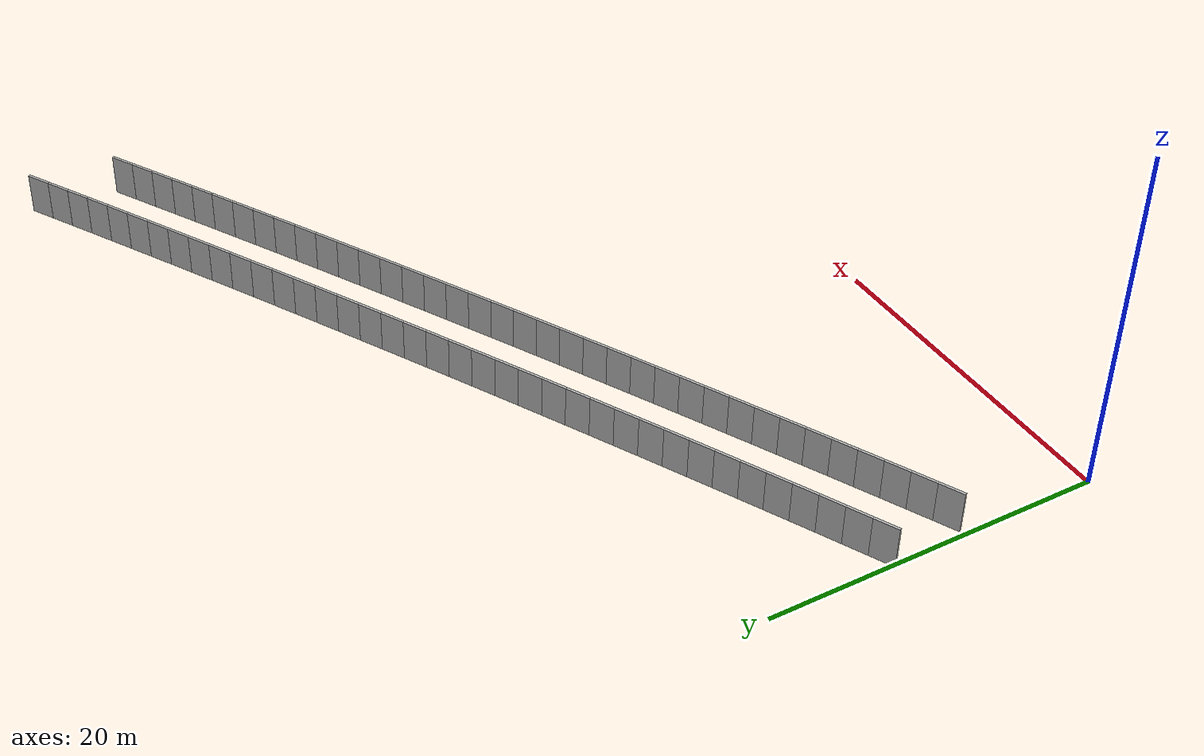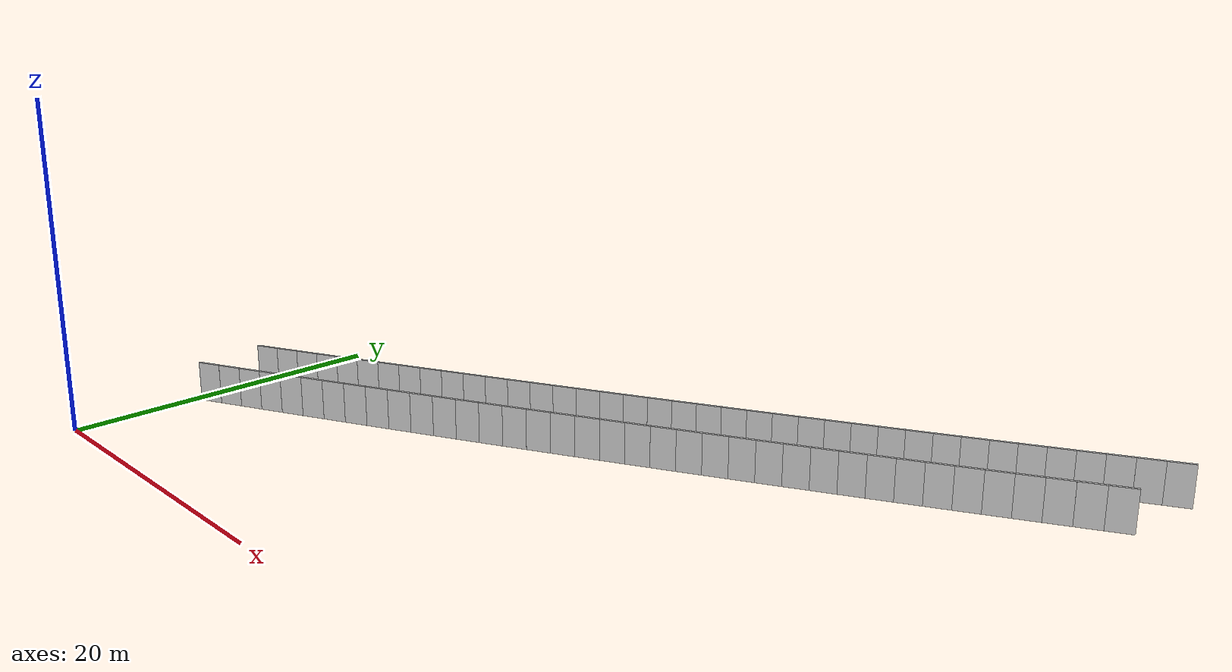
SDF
<?xml version="1.0" ?>
<sdf version="1.6">
  <model name="sps_3405">
    <pose frame="">0 0 0 0 -0 0</pose>
    <static>1</static>
    <self_collide>0</self_collide>
    <allow_auto_disable>0</allow_auto_disable>
    <link name="Wall3948">
      <kinematic>0</kinematic>
      <gravity>1</gravity>
      <self_collide>0</self_collide>
      <collision name="collision">
        <geometry>
          <box>
            <size>1.49651 0.15 2.5</size>
          </box>
        </geometry>
        <pose frame="">0 0 0 0 -0 0</pose>
      </collision>
      <visual name="visual">
        <geometry>
          <box>
            <size>1.49651 0.15 2.5</size>
          </box>
        </geometry>
        <pose frame="">0 0 0 0 -0 0</pose>
        <cast_shadows>1</cast_shadows>
        <transparency>0.0</transparency>
      </visual>
      <pose frame="">0.59185 12.7953 1.25 0 -0 0.449329</pose>
    </link>
    <link name="Wall3949">
      <kinematic>0</kinematic>
      <gravity>1</gravity>
      <self_collide>0</self_collide>
      <collision name="collision">
        <geometry>
          <box>
            <size>1.4967 0.15 2.5</size>
          </box>
        </geometry>
        <pose frame="">0 0 0 0 -0 0</pose>
      </collision>
      <visual name="visual">
        <geometry>
          <box>
            <size>1.4967 0.15 2.5</size>
          </box>
        </geometry>
        <pose frame="">0 0 0 0 -0 0</pose>
        <cast_shadows>1</cast_shadows>
        <transparency>0.0</transparency>
      </visual>
      <pose frame="">1.93944 13.4463 1.25 0 -0 0.450717</pose>
    </link>
    <link name="Wall3950">
      <kinematic>0</kinematic>
      <gravity>1</gravity>
      <self_collide>0</self_collide>
      <collision name="collision">
        <geometry>
          <box>
            <size>1.49639 0.15 2.5</size>
          </box>
        </geometry>
        <pose frame="">0 0 0 0 -0 0</pose>
      </collision>
      <visual name="visual">
        <geometry>
          <box>
            <size>1.49639 0.15 2.5</size>
          </box>
        </geometry>
        <pose frame="">0 0 0 0 -0 0</pose>
        <cast_shadows>1</cast_shadows>
        <transparency>0.0</transparency>
      </visual>
      <pose frame="">3.28597 14.0994 1.25 0 -0 0.452447</pose>
    </link>
    <link name="Wall3951">
      <kinematic>0</kinematic>
      <gravity>1</gravity>
      <self_collide>0</self_collide>
      <collision name="collision">
        <geometry>
          <box>
            <size>1.49669 0.15 2.5</size>
          </box>
        </geometry>
        <pose frame="">0 0 0 0 -0 0</pose>
      </collision>
      <visual name="visual">
        <geometry>
          <box>
            <size>1.49669 0.15 2.5</size>
          </box>
        </geometry>
        <pose frame="">0 0 0 0 -0 0</pose>
        <cast_shadows>1</cast_shadows>
        <transparency>0.0</transparency>
      </visual>
      <pose frame="">4.63137 14.7548 1.25 0 -0 0.454164</pose>
    </link>
    <link name="Wall3952">
      <kinematic>0</kinematic>
      <gravity>1</gravity>
      <self_collide>0</self_collide>
      <collision name="collision">
        <geometry>
          <box>
            <size>1.49643 0.15 2.5</size>
          </box>
        </geometry>
        <pose frame="">0 0 0 0 -0 0</pose>
      </collision>
      <visual name="visual">
        <geometry>
          <box>
            <size>1.49643 0.15 2.5</size>
          </box>
        </geometry>
        <pose frame="">0 0 0 0 -0 0</pose>
        <cast_shadows>1</cast_shadows>
        <transparency>0.0</transparency>
      </visual>
      <pose frame="">5.97576 15.4123 1.25 0 -0 0.455567</pose>
    </link>
    <link name="Wall3953">
      <kinematic>0</kinematic>
      <gravity>1</gravity>
      <self_collide>0</self_collide>
      <collision name="collision">
        <geometry>
          <box>
            <size>1.49649 0.15 2.5</size>
          </box>
        </geometry>
        <pose frame="">0 0 0 0 -0 0</pose>
      </collision>
      <visual name="visual">
        <geometry>
          <box>
            <size>1.49649 0.15 2.5</size>
          </box>
        </geometry>
        <pose frame="">0 0 0 0 -0 0</pose>
        <cast_shadows>1</cast_shadows>
        <transparency>0.0</transparency>
      </visual>
      <pose frame="">7.31905 16.0718 1.25 0 -0 0.457227</pose>
    </link>
    <link name="Wall3954">
      <kinematic>0</kinematic>
      <gravity>1</gravity>
      <self_collide>0</self_collide>
      <collision name="collision">
        <geometry>
          <box>
            <size>1.49656 0.15 2.5</size>
          </box>
        </geometry>
        <pose frame="">0 0 0 0 -0 0</pose>
      </collision>
      <visual name="visual">
        <geometry>
          <box>
            <size>1.49656 0.15 2.5</size>
          </box>
        </geometry>
        <pose frame="">0 0 0 0 -0 0</pose>
        <cast_shadows>1</cast_shadows>
        <transparency>0.0</transparency>
      </visual>
      <pose frame="">8.66134 16.7335 1.25 0 -0 0.458796</pose>
    </link>
    <link name="Wall3955">
      <kinematic>0</kinematic>
      <gravity>1</gravity>
      <self_collide>0</self_collide>
      <collision name="collision">
        <geometry>
          <box>
            <size>1.4965 0.15 2.5</size>
          </box>
        </geometry>
        <pose frame="">0 0 0 0 -0 0</pose>
      </collision>
      <visual name="visual">
        <geometry>
          <box>
            <size>1.4965 0.15 2.5</size>
          </box>
        </geometry>
        <pose frame="">0 0 0 0 -0 0</pose>
        <cast_shadows>1</cast_shadows>
        <transparency>0.0</transparency>
      </visual>
      <pose frame="">10.0026 17.3974 1.25 0 -0 0.460456</pose>
    </link>
    <link name="Wall3956">
      <kinematic>0</kinematic>
      <gravity>1</gravity>
      <self_collide>0</self_collide>
      <collision name="collision">
        <geometry>
          <box>
            <size>1.49663 0.15 2.5</size>
          </box>
        </geometry>
        <pose frame="">0 0 0 0 -0 0</pose>
      </collision>
      <visual name="visual">
        <geometry>
          <box>
            <size>1.49663 0.15 2.5</size>
          </box>
        </geometry>
        <pose frame="">0 0 0 0 -0 0</pose>
        <cast_shadows>1</cast_shadows>
        <transparency>0.0</transparency>
      </visual>
      <pose frame="">11.3428 18.0634 1.25 0 -0 0.461915</pose>
    </link>
    <link name="Wall3957">
      <kinematic>0</kinematic>
      <gravity>1</gravity>
      <self_collide>0</self_collide>
      <collision name="collision">
        <geometry>
          <box>
            <size>1.49627 0.15 2.5</size>
          </box>
        </geometry>
        <pose frame="">0 0 0 0 -0 0</pose>
      </collision>
      <visual name="visual">
        <geometry>
          <box>
            <size>1.49627 0.15 2.5</size>
          </box>
        </geometry>
        <pose frame="">0 0 0 0 -0 0</pose>
        <cast_shadows>1</cast_shadows>
        <transparency>0.0</transparency>
      </visual>
      <pose frame="">12.6818 18.7314 1.25 0 -0 0.463538</pose>
    </link>
    <link name="Wall3958">
      <kinematic>0</kinematic>
      <gravity>1</gravity>
      <self_collide>0</self_collide>
      <collision name="collision">
        <geometry>
          <box>
            <size>1.49638 0.15 2.5</size>
          </box>
        </geometry>
        <pose frame="">0 0 0 0 -0 0</pose>
      </collision>
      <visual name="visual">
        <geometry>
          <box>
            <size>1.49638 0.15 2.5</size>
          </box>
        </geometry>
        <pose frame="">0 0 0 0 -0 0</pose>
        <cast_shadows>1</cast_shadows>
        <transparency>0.0</transparency>
      </visual>
      <pose frame="">14.0197 19.4015 1.25 0 -0 0.465143</pose>
    </link>
    <link name="Wall3959">
      <kinematic>0</kinematic>
      <gravity>1</gravity>
      <self_collide>0</self_collide>
      <collision name="collision">
        <geometry>
          <box>
            <size>1.4965 0.15 2.5</size>
          </box>
        </geometry>
        <pose frame="">0 0 0 0 -0 0</pose>
      </collision>
      <visual name="visual">
        <geometry>
          <box>
            <size>1.4965 0.15 2.5</size>
          </box>
        </geometry>
        <pose frame="">0 0 0 0 -0 0</pose>
        <cast_shadows>1</cast_shadows>
        <transparency>0.0</transparency>
      </visual>
      <pose frame="">15.3567 20.0738 1.25 0 -0 0.466748</pose>
    </link>
    <link name="Wall3960">
      <kinematic>0</kinematic>
      <gravity>1</gravity>
      <self_collide>0</self_collide>
      <collision name="collision">
        <geometry>
          <box>
            <size>1.49672 0.15 2.5</size>
          </box>
        </geometry>
        <pose frame="">0 0 0 0 -0 0</pose>
      </collision>
      <visual name="visual">
        <geometry>
          <box>
            <size>1.49672 0.15 2.5</size>
          </box>
        </geometry>
        <pose frame="">0 0 0 0 -0 0</pose>
        <cast_shadows>1</cast_shadows>
        <transparency>0.0</transparency>
      </visual>
      <pose frame="">16.6926 20.7483 1.25 0 -0 0.468316</pose>
    </link>
    <link name="Wall3961">
      <kinematic>0</kinematic>
      <gravity>1</gravity>
      <self_collide>0</self_collide>
      <collision name="collision">
        <geometry>
          <box>
            <size>1.4966 0.15 2.5</size>
          </box>
        </geometry>
        <pose frame="">0 0 0 0 -0 0</pose>
      </collision>
      <visual name="visual">
        <geometry>
          <box>
            <size>1.4966 0.15 2.5</size>
          </box>
        </geometry>
        <pose frame="">0 0 0 0 -0 0</pose>
        <cast_shadows>1</cast_shadows>
        <transparency>0.0</transparency>
      </visual>
      <pose frame="">18.0276 21.4249 1.25 0 -0 0.469867</pose>
    </link>
    <link name="Wall3962">
      <kinematic>0</kinematic>
      <gravity>1</gravity>
      <self_collide>0</self_collide>
      <collision name="collision">
        <geometry>
          <box>
            <size>1.49651 0.15 2.5</size>
          </box>
        </geometry>
        <pose frame="">0 0 0 0 -0 0</pose>
      </collision>
      <visual name="visual">
        <geometry>
          <box>
            <size>1.49651 0.15 2.5</size>
          </box>
        </geometry>
        <pose frame="">0 0 0 0 -0 0</pose>
        <cast_shadows>1</cast_shadows>
        <transparency>0.0</transparency>
      </visual>
      <pose frame="">19.3614 22.1036 1.25 0 -0 0.471545</pose>
    </link>
    <link name="Wall3963">
      <kinematic>0</kinematic>
      <gravity>1</gravity>
      <self_collide>0</self_collide>
      <collision name="collision">
        <geometry>
          <box>
            <size>1.49656 0.15 2.5</size>
          </box>
        </geometry>
        <pose frame="">0 0 0 0 -0 0</pose>
      </collision>
      <visual name="visual">
        <geometry>
          <box>
            <size>1.49656 0.15 2.5</size>
          </box>
        </geometry>
        <pose frame="">0 0 0 0 -0 0</pose>
        <cast_shadows>1</cast_shadows>
        <transparency>0.0</transparency>
      </visual>
      <pose frame="">20.6941 22.7844 1.25 0 -0 0.473041</pose>
    </link>
    <link name="Wall3964">
      <kinematic>0</kinematic>
      <gravity>1</gravity>
      <self_collide>0</self_collide>
      <collision name="collision">
        <geometry>
          <box>
            <size>1.49661 0.15 2.5</size>
          </box>
        </geometry>
        <pose frame="">0 0 0 0 -0 0</pose>
      </collision>
      <visual name="visual">
        <geometry>
          <box>
            <size>1.49661 0.15 2.5</size>
          </box>
        </geometry>
        <pose frame="">0 0 0 0 -0 0</pose>
        <cast_shadows>1</cast_shadows>
        <transparency>0.0</transparency>
      </visual>
      <pose frame="">22.0258 23.4673 1.25 0 -0 0.474627</pose>
    </link>
    <link name="Wall3965">
      <kinematic>0</kinematic>
      <gravity>1</gravity>
      <self_collide>0</self_collide>
      <collision name="collision">
        <geometry>
          <box>
            <size>1.49636 0.15 2.5</size>
          </box>
        </geometry>
        <pose frame="">0 0 0 0 -0 0</pose>
      </collision>
      <visual name="visual">
        <geometry>
          <box>
            <size>1.49636 0.15 2.5</size>
          </box>
        </geometry>
        <pose frame="">0 0 0 0 -0 0</pose>
        <cast_shadows>1</cast_shadows>
        <transparency>0.0</transparency>
      </visual>
      <pose frame="">23.3563 24.1523 1.25 0 -0 0.476271</pose>
    </link>
    <link name="Wall3966">
      <kinematic>0</kinematic>
      <gravity>1</gravity>
      <self_collide>0</self_collide>
      <collision name="collision">
        <geometry>
          <box>
            <size>1.49658 0.15 2.5</size>
          </box>
        </geometry>
        <pose frame="">0 0 0 0 -0 0</pose>
      </collision>
      <visual name="visual">
        <geometry>
          <box>
            <size>1.49658 0.15 2.5</size>
          </box>
        </geometry>
        <pose frame="">0 0 0 0 -0 0</pose>
        <cast_shadows>1</cast_shadows>
        <transparency>0.0</transparency>
      </visual>
      <pose frame="">24.6858 24.8394 1.25 0 -0 0.477801</pose>
    </link>
    <link name="Wall3967">
      <kinematic>0</kinematic>
      <gravity>1</gravity>
      <self_collide>0</self_collide>
      <collision name="collision">
        <geometry>
          <box>
            <size>1.49676 0.15 2.5</size>
          </box>
        </geometry>
        <pose frame="">0 0 0 0 -0 0</pose>
      </collision>
      <visual name="visual">
        <geometry>
          <box>
            <size>1.49676 0.15 2.5</size>
          </box>
        </geometry>
        <pose frame="">0 0 0 0 -0 0</pose>
        <cast_shadows>1</cast_shadows>
        <transparency>0.0</transparency>
      </visual>
      <pose frame="">26.0142 25.5287 1.25 0 -0 0.479441</pose>
    </link>
    <link name="Wall3968">
      <kinematic>0</kinematic>
      <gravity>1</gravity>
      <self_collide>0</self_collide>
      <collision name="collision">
        <geometry>
          <box>
            <size>1.49642 0.15 2.5</size>
          </box>
        </geometry>
        <pose frame="">0 0 0 0 -0 0</pose>
      </collision>
      <visual name="visual">
        <geometry>
          <box>
            <size>1.49642 0.15 2.5</size>
          </box>
        </geometry>
        <pose frame="">0 0 0 0 -0 0</pose>
        <cast_shadows>1</cast_shadows>
        <transparency>0.0</transparency>
      </visual>
      <pose frame="">27.3415 26.2201 1.25 0 -0 0.481032</pose>
    </link>
    <link name="Wall3969">
      <kinematic>0</kinematic>
      <gravity>1</gravity>
      <self_collide>0</self_collide>
      <collision name="collision">
        <geometry>
          <box>
            <size>1.49648 0.15 2.5</size>
          </box>
        </geometry>
        <pose frame="">0 0 0 0 -0 0</pose>
      </collision>
      <visual name="visual">
        <geometry>
          <box>
            <size>1.49648 0.15 2.5</size>
          </box>
        </geometry>
        <pose frame="">0 0 0 0 -0 0</pose>
        <cast_shadows>1</cast_shadows>
        <transparency>0.0</transparency>
      </visual>
      <pose frame="">28.6677 26.9135 1.25 0 -0 0.482527</pose>
    </link>
    <link name="Wall3970">
      <kinematic>0</kinematic>
      <gravity>1</gravity>
      <self_collide>0</self_collide>
      <collision name="collision">
        <geometry>
          <box>
            <size>1.49659 0.15 2.5</size>
          </box>
        </geometry>
        <pose frame="">0 0 0 0 -0 0</pose>
      </collision>
      <visual name="visual">
        <geometry>
          <box>
            <size>1.49659 0.15 2.5</size>
          </box>
        </geometry>
        <pose frame="">0 0 0 0 -0 0</pose>
        <cast_shadows>1</cast_shadows>
        <transparency>0.0</transparency>
      </visual>
      <pose frame="">29.9928 27.609 1.25 0 -0 0.484149</pose>
    </link>
    <link name="Wall3971">
      <kinematic>0</kinematic>
      <gravity>1</gravity>
      <self_collide>0</self_collide>
      <collision name="collision">
        <geometry>
          <box>
            <size>1.4965 0.15 2.5</size>
          </box>
        </geometry>
        <pose frame="">0 0 0 0 -0 0</pose>
      </collision>
      <visual name="visual">
        <geometry>
          <box>
            <size>1.4965 0.15 2.5</size>
          </box>
        </geometry>
        <pose frame="">0 0 0 0 -0 0</pose>
        <cast_shadows>1</cast_shadows>
        <transparency>0.0</transparency>
      </visual>
      <pose frame="">31.3168 28.3066 1.25 0 -0 0.485701</pose>
    </link>
    <link name="Wall3972">
      <kinematic>0</kinematic>
      <gravity>1</gravity>
      <self_collide>0</self_collide>
      <collision name="collision">
        <geometry>
          <box>
            <size>1.49645 0.15 2.5</size>
          </box>
        </geometry>
        <pose frame="">0 0 0 0 -0 0</pose>
      </collision>
      <visual name="visual">
        <geometry>
          <box>
            <size>1.49645 0.15 2.5</size>
          </box>
        </geometry>
        <pose frame="">0 0 0 0 -0 0</pose>
        <cast_shadows>1</cast_shadows>
        <transparency>0.0</transparency>
      </visual>
      <pose frame="">32.6396 29.0063 1.25 0 -0 0.487381</pose>
    </link>
    <link name="Wall3973">
      <kinematic>0</kinematic>
      <gravity>1</gravity>
      <self_collide>0</self_collide>
      <collision name="collision">
        <geometry>
          <box>
            <size>1.49661 0.15 2.5</size>
          </box>
        </geometry>
        <pose frame="">0 0 0 0 -0 0</pose>
      </collision>
      <visual name="visual">
        <geometry>
          <box>
            <size>1.49661 0.15 2.5</size>
          </box>
        </geometry>
        <pose frame="">0 0 0 0 -0 0</pose>
        <cast_shadows>1</cast_shadows>
        <transparency>0.0</transparency>
      </visual>
      <pose frame="">33.9614 29.7081 1.25 0 -0 0.488801</pose>
    </link>
    <link name="Wall3974">
      <kinematic>0</kinematic>
      <gravity>1</gravity>
      <self_collide>0</self_collide>
      <collision name="collision">
        <geometry>
          <box>
            <size>1.49649 0.15 2.5</size>
          </box>
        </geometry>
        <pose frame="">0 0 0 0 -0 0</pose>
      </collision>
      <visual name="visual">
        <geometry>
          <box>
            <size>1.49649 0.15 2.5</size>
          </box>
        </geometry>
        <pose frame="">0 0 0 0 -0 0</pose>
        <cast_shadows>1</cast_shadows>
        <transparency>0.0</transparency>
      </visual>
      <pose frame="">35.282 30.412 1.25 0 -0 0.490555</pose>
    </link>
    <link name="Wall3975">
      <kinematic>0</kinematic>
      <gravity>1</gravity>
      <self_collide>0</self_collide>
      <collision name="collision">
        <geometry>
          <box>
            <size>1.49657 0.15 2.5</size>
          </box>
        </geometry>
        <pose frame="">0 0 0 0 -0 0</pose>
      </collision>
      <visual name="visual">
        <geometry>
          <box>
            <size>1.49657 0.15 2.5</size>
          </box>
        </geometry>
        <pose frame="">0 0 0 0 -0 0</pose>
        <cast_shadows>1</cast_shadows>
        <transparency>0.0</transparency>
      </visual>
      <pose frame="">36.6016 31.118 1.25 0 -0 0.492049</pose>
    </link>
    <link name="Wall3976">
      <kinematic>0</kinematic>
      <gravity>1</gravity>
      <self_collide>0</self_collide>
      <collision name="collision">
        <geometry>
          <box>
            <size>1.49651 0.15 2.5</size>
          </box>
        </geometry>
        <pose frame="">0 0 0 0 -0 0</pose>
      </collision>
      <visual name="visual">
        <geometry>
          <box>
            <size>1.49651 0.15 2.5</size>
          </box>
        </geometry>
        <pose frame="">0 0 0 0 -0 0</pose>
        <cast_shadows>1</cast_shadows>
        <transparency>0.0</transparency>
      </visual>
      <pose frame="">37.92 31.8261 1.25 0 -0 0.493693</pose>
    </link>
    <link name="Wall3977">
      <kinematic>0</kinematic>
      <gravity>1</gravity>
      <self_collide>0</self_collide>
      <collision name="collision">
        <geometry>
          <box>
            <size>1.49674 0.15 2.5</size>
          </box>
        </geometry>
        <pose frame="">0 0 0 0 -0 0</pose>
      </collision>
      <visual name="visual">
        <geometry>
          <box>
            <size>1.49674 0.15 2.5</size>
          </box>
        </geometry>
        <pose frame="">0 0 0 0 -0 0</pose>
        <cast_shadows>1</cast_shadows>
        <transparency>0.0</transparency>
      </visual>
      <pose frame="">39.2374 32.5363 1.25 0 -0 0.495184</pose>
    </link>
    <link name="Wall3978">
      <kinematic>0</kinematic>
      <gravity>1</gravity>
      <self_collide>0</self_collide>
      <collision name="collision">
        <geometry>
          <box>
            <size>1.49658 0.15 2.5</size>
          </box>
        </geometry>
        <pose frame="">0 0 0 0 -0 0</pose>
      </collision>
      <visual name="visual">
        <geometry>
          <box>
            <size>1.49658 0.15 2.5</size>
          </box>
        </geometry>
        <pose frame="">0 0 0 0 -0 0</pose>
        <cast_shadows>1</cast_shadows>
        <transparency>0.0</transparency>
      </visual>
      <pose frame="">40.5536 33.2486 1.25 0 -0 0.496867</pose>
    </link>
    <link name="Wall3979">
      <kinematic>0</kinematic>
      <gravity>1</gravity>
      <self_collide>0</self_collide>
      <collision name="collision">
        <geometry>
          <box>
            <size>1.49647 0.15 2.5</size>
          </box>
        </geometry>
        <pose frame="">0 0 0 0 -0 0</pose>
      </collision>
      <visual name="visual">
        <geometry>
          <box>
            <size>1.49647 0.15 2.5</size>
          </box>
        </geometry>
        <pose frame="">0 0 0 0 -0 0</pose>
        <cast_shadows>1</cast_shadows>
        <transparency>0.0</transparency>
      </visual>
      <pose frame="">41.8686 33.963 1.25 0 -0 0.498439</pose>
    </link>
    <link name="Wall3980">
      <kinematic>0</kinematic>
      <gravity>1</gravity>
      <self_collide>0</self_collide>
      <collision name="collision">
        <geometry>
          <box>
            <size>1.49641 0.15 2.5</size>
          </box>
        </geometry>
        <pose frame="">0 0 0 0 -0 0</pose>
      </collision>
      <visual name="visual">
        <geometry>
          <box>
            <size>1.49641 0.15 2.5</size>
          </box>
        </geometry>
        <pose frame="">0 0 0 0 -0 0</pose>
        <cast_shadows>1</cast_shadows>
        <transparency>0.0</transparency>
      </visual>
      <pose frame="">43.1825 34.6794 1.25 0 -0 0.499991</pose>
    </link>
    <link name="Wall3981">
      <kinematic>0</kinematic>
      <gravity>1</gravity>
      <self_collide>0</self_collide>
      <collision name="collision">
        <geometry>
          <box>
            <size>1.49656 0.15 2.5</size>
          </box>
        </geometry>
        <pose frame="">0 0 0 0 -0 0</pose>
      </collision>
      <visual name="visual">
        <geometry>
          <box>
            <size>1.49656 0.15 2.5</size>
          </box>
        </geometry>
        <pose frame="">0 0 0 0 -0 0</pose>
        <cast_shadows>1</cast_shadows>
        <transparency>0.0</transparency>
      </visual>
      <pose frame="">44.4952 35.3979 1.25 0 -0 0.501612</pose>
    </link>
    <link name="Wall3982">
      <kinematic>0</kinematic>
      <gravity>1</gravity>
      <self_collide>0</self_collide>
      <collision name="collision">
        <geometry>
          <box>
            <size>1.49655 0.15 2.5</size>
          </box>
        </geometry>
        <pose frame="">0 0 0 0 -0 0</pose>
      </collision>
      <visual name="visual">
        <geometry>
          <box>
            <size>1.49655 0.15 2.5</size>
          </box>
        </geometry>
        <pose frame="">0 0 0 0 -0 0</pose>
        <cast_shadows>1</cast_shadows>
        <transparency>0.0</transparency>
      </visual>
      <pose frame="">45.8068 36.1186 1.25 0 -0 0.503292</pose>
    </link>
    <link name="Wall3983">
      <kinematic>0</kinematic>
      <gravity>1</gravity>
      <self_collide>0</self_collide>
      <collision name="collision">
        <geometry>
          <box>
            <size>1.49639 0.15 2.5</size>
          </box>
        </geometry>
        <pose frame="">0 0 0 0 -0 0</pose>
      </collision>
      <visual name="visual">
        <geometry>
          <box>
            <size>1.49639 0.15 2.5</size>
          </box>
        </geometry>
        <pose frame="">0 0 0 0 -0 0</pose>
        <cast_shadows>1</cast_shadows>
        <transparency>0.0</transparency>
      </visual>
      <pose frame="">47.1171 36.8413 1.25 0 -0 0.504702</pose>
    </link>
    <link name="Wall3984">
      <kinematic>0</kinematic>
      <gravity>1</gravity>
      <self_collide>0</self_collide>
      <collision name="collision">
        <geometry>
          <box>
            <size>1.49657 0.15 2.5</size>
          </box>
        </geometry>
        <pose frame="">0 0 0 0 -0 0</pose>
      </collision>
      <visual name="visual">
        <geometry>
          <box>
            <size>1.49657 0.15 2.5</size>
          </box>
        </geometry>
        <pose frame="">0 0 0 0 -0 0</pose>
        <cast_shadows>1</cast_shadows>
        <transparency>0.0</transparency>
      </visual>
      <pose frame="">48.4264 37.566 1.25 0 -0 0.506358</pose>
    </link>
    <link name="Wall3985">
      <kinematic>0</kinematic>
      <gravity>1</gravity>
      <self_collide>0</self_collide>
      <collision name="collision">
        <geometry>
          <box>
            <size>1.49651 0.15 2.5</size>
          </box>
        </geometry>
        <pose frame="">0 0 0 0 -0 0</pose>
      </collision>
      <visual name="visual">
        <geometry>
          <box>
            <size>1.49651 0.15 2.5</size>
          </box>
        </geometry>
        <pose frame="">0 0 0 0 -0 0</pose>
        <cast_shadows>1</cast_shadows>
        <transparency>0.0</transparency>
      </visual>
      <pose frame="">49.7346 38.2928 1.25 0 -0 0.507875</pose>
    </link>
    <link name="Wall7722">
      <kinematic>0</kinematic>
      <gravity>1</gravity>
      <self_collide>0</self_collide>
      <collision name="collision">
        <geometry>
          <box>
            <size>1.50307 0.15 2.5</size>
          </box>
        </geometry>
        <pose frame="">0 0 0 0 -0 0</pose>
      </collision>
      <visual name="visual">
        <geometry>
          <box>
            <size>1.50307 0.15 2.5</size>
          </box>
        </geometry>
        <pose frame="">0 0 0 0 -0 0</pose>
        <cast_shadows>1</cast_shadows>
        <transparency>0.0</transparency>
      </visual>
      <pose frame="">1.03774 8.41478 1.25 0 -0 0.44763</pose>
    </link>
    <link name="Wall7723">
      <kinematic>0</kinematic>
      <gravity>1</gravity>
      <self_collide>0</self_collide>
      <collision name="collision">
        <geometry>
          <box>
            <size>1.50317 0.15 2.5</size>
          </box>
        </geometry>
        <pose frame="">0 0 0 0 -0 0</pose>
      </collision>
      <visual name="visual">
        <geometry>
          <box>
            <size>1.50317 0.15 2.5</size>
          </box>
        </geometry>
        <pose frame="">0 0 0 0 -0 0</pose>
        <cast_shadows>1</cast_shadows>
        <transparency>0.0</transparency>
      </visual>
      <pose frame="">2.39223 9.06648 1.25 0 -0 0.449265</pose>
    </link>
    <link name="Wall7724">
      <kinematic>0</kinematic>
      <gravity>1</gravity>
      <self_collide>0</self_collide>
      <collision name="collision">
        <geometry>
          <box>
            <size>1.50305 0.15 2.5</size>
          </box>
        </geometry>
        <pose frame="">0 0 0 0 -0 0</pose>
      </collision>
      <visual name="visual">
        <geometry>
          <box>
            <size>1.50305 0.15 2.5</size>
          </box>
        </geometry>
        <pose frame="">0 0 0 0 -0 0</pose>
        <cast_shadows>1</cast_shadows>
        <transparency>0.0</transparency>
      </visual>
      <pose frame="">3.74566 9.72038 1.25 0 -0 0.450881</pose>
    </link>
    <link name="Wall7725">
      <kinematic>0</kinematic>
      <gravity>1</gravity>
      <self_collide>0</self_collide>
      <collision name="collision">
        <geometry>
          <box>
            <size>1.50297 0.15 2.5</size>
          </box>
        </geometry>
        <pose frame="">0 0 0 0 -0 0</pose>
      </collision>
      <visual name="visual">
        <geometry>
          <box>
            <size>1.50297 0.15 2.5</size>
          </box>
        </geometry>
        <pose frame="">0 0 0 0 -0 0</pose>
        <cast_shadows>1</cast_shadows>
        <transparency>0.0</transparency>
      </visual>
      <pose frame="">5.09795 10.3764 1.25 0 -0 0.452442</pose>
    </link>
    <link name="Wall7726">
      <kinematic>0</kinematic>
      <gravity>1</gravity>
      <self_collide>0</self_collide>
      <collision name="collision">
        <geometry>
          <box>
            <size>1.50316 0.15 2.5</size>
          </box>
        </geometry>
        <pose frame="">0 0 0 0 -0 0</pose>
      </collision>
      <visual name="visual">
        <geometry>
          <box>
            <size>1.50316 0.15 2.5</size>
          </box>
        </geometry>
        <pose frame="">0 0 0 0 -0 0</pose>
        <cast_shadows>1</cast_shadows>
        <transparency>0.0</transparency>
      </visual>
      <pose frame="">6.44924 11.0346 1.25 0 -0 0.454096</pose>
    </link>
    <link name="Wall7727">
      <kinematic>0</kinematic>
      <gravity>1</gravity>
      <self_collide>0</self_collide>
      <collision name="collision">
        <geometry>
          <box>
            <size>1.50298 0.15 2.5</size>
          </box>
        </geometry>
        <pose frame="">0 0 0 0 -0 0</pose>
      </collision>
      <visual name="visual">
        <geometry>
          <box>
            <size>1.50298 0.15 2.5</size>
          </box>
        </geometry>
        <pose frame="">0 0 0 0 -0 0</pose>
        <cast_shadows>1</cast_shadows>
        <transparency>0.0</transparency>
      </visual>
      <pose frame="">7.79946 11.695 1.25 0 -0 0.455693</pose>
    </link>
    <link name="Wall7728">
      <kinematic>0</kinematic>
      <gravity>1</gravity>
      <self_collide>0</self_collide>
      <collision name="collision">
        <geometry>
          <box>
            <size>1.50321 0.15 2.5</size>
          </box>
        </geometry>
        <pose frame="">0 0 0 0 -0 0</pose>
      </collision>
      <visual name="visual">
        <geometry>
          <box>
            <size>1.50321 0.15 2.5</size>
          </box>
        </geometry>
        <pose frame="">0 0 0 0 -0 0</pose>
        <cast_shadows>1</cast_shadows>
        <transparency>0.0</transparency>
      </visual>
      <pose frame="">9.14867 12.3575 1.25 0 -0 0.457201</pose>
    </link>
    <link name="Wall7729">
      <kinematic>0</kinematic>
      <gravity>1</gravity>
      <self_collide>0</self_collide>
      <collision name="collision">
        <geometry>
          <box>
            <size>1.503 0.15 2.5</size>
          </box>
        </geometry>
        <pose frame="">0 0 0 0 -0 0</pose>
      </collision>
      <visual name="visual">
        <geometry>
          <box>
            <size>1.503 0.15 2.5</size>
          </box>
        </geometry>
        <pose frame="">0 0 0 0 -0 0</pose>
        <cast_shadows>1</cast_shadows>
        <transparency>0.0</transparency>
      </visual>
      <pose frame="">10.4969 13.0221 1.25 0 -0 0.458762</pose>
    </link>
    <link name="Wall7730">
      <kinematic>0</kinematic>
      <gravity>1</gravity>
      <self_collide>0</self_collide>
      <collision name="collision">
        <geometry>
          <box>
            <size>1.50316 0.15 2.5</size>
          </box>
        </geometry>
        <pose frame="">0 0 0 0 -0 0</pose>
      </collision>
      <visual name="visual">
        <geometry>
          <box>
            <size>1.50316 0.15 2.5</size>
          </box>
        </geometry>
        <pose frame="">0 0 0 0 -0 0</pose>
        <cast_shadows>1</cast_shadows>
        <transparency>0.0</transparency>
      </visual>
      <pose frame="">11.844 13.6889 1.25 0 -0 0.460524</pose>
    </link>
    <link name="Wall7731">
      <kinematic>0</kinematic>
      <gravity>1</gravity>
      <self_collide>0</self_collide>
      <collision name="collision">
        <geometry>
          <box>
            <size>1.50299 0.15 2.5</size>
          </box>
        </geometry>
        <pose frame="">0 0 0 0 -0 0</pose>
      </collision>
      <visual name="visual">
        <geometry>
          <box>
            <size>1.50299 0.15 2.5</size>
          </box>
        </geometry>
        <pose frame="">0 0 0 0 -0 0</pose>
        <cast_shadows>1</cast_shadows>
        <transparency>0.0</transparency>
      </visual>
      <pose frame="">13.1899 14.3579 1.25 0 -0 0.462031</pose>
    </link>
    <link name="Wall7732">
      <kinematic>0</kinematic>
      <gravity>1</gravity>
      <self_collide>0</self_collide>
      <collision name="collision">
        <geometry>
          <box>
            <size>1.50301 0.15 2.5</size>
          </box>
        </geometry>
        <pose frame="">0 0 0 0 -0 0</pose>
      </collision>
      <visual name="visual">
        <geometry>
          <box>
            <size>1.50301 0.15 2.5</size>
          </box>
        </geometry>
        <pose frame="">0 0 0 0 -0 0</pose>
        <cast_shadows>1</cast_shadows>
        <transparency>0.0</transparency>
      </visual>
      <pose frame="">14.5348 15.0289 1.25 0 -0 0.46352</pose>
    </link>
    <link name="Wall7733">
      <kinematic>0</kinematic>
      <gravity>1</gravity>
      <self_collide>0</self_collide>
      <collision name="collision">
        <geometry>
          <box>
            <size>1.50307 0.15 2.5</size>
          </box>
        </geometry>
        <pose frame="">0 0 0 0 -0 0</pose>
      </collision>
      <visual name="visual">
        <geometry>
          <box>
            <size>1.50307 0.15 2.5</size>
          </box>
        </geometry>
        <pose frame="">0 0 0 0 -0 0</pose>
        <cast_shadows>1</cast_shadows>
        <transparency>0.0</transparency>
      </visual>
      <pose frame="">15.8787 15.702 1.25 0 -0 0.465137</pose>
    </link>
    <link name="Wall7734">
      <kinematic>0</kinematic>
      <gravity>1</gravity>
      <self_collide>0</self_collide>
      <collision name="collision">
        <geometry>
          <box>
            <size>1.50318 0.15 2.5</size>
          </box>
        </geometry>
        <pose frame="">0 0 0 0 -0 0</pose>
      </collision>
      <visual name="visual">
        <geometry>
          <box>
            <size>1.50318 0.15 2.5</size>
          </box>
        </geometry>
        <pose frame="">0 0 0 0 -0 0</pose>
        <cast_shadows>1</cast_shadows>
        <transparency>0.0</transparency>
      </visual>
      <pose frame="">17.2216 16.3773 1.25 0 -0 0.466735</pose>
    </link>
    <link name="Wall7735">
      <kinematic>0</kinematic>
      <gravity>1</gravity>
      <self_collide>0</self_collide>
      <collision name="collision">
        <geometry>
          <box>
            <size>1.503 0.15 2.5</size>
          </box>
        </geometry>
        <pose frame="">0 0 0 0 -0 0</pose>
      </collision>
      <visual name="visual">
        <geometry>
          <box>
            <size>1.503 0.15 2.5</size>
          </box>
        </geometry>
        <pose frame="">0 0 0 0 -0 0</pose>
        <cast_shadows>1</cast_shadows>
        <transparency>0.0</transparency>
      </visual>
      <pose frame="">18.5634 17.0547 1.25 0 -0 0.468297</pose>
    </link>
    <link name="Wall7736">
      <kinematic>0</kinematic>
      <gravity>1</gravity>
      <self_collide>0</self_collide>
      <collision name="collision">
        <geometry>
          <box>
            <size>1.50312 0.15 2.5</size>
          </box>
        </geometry>
        <pose frame="">0 0 0 0 -0 0</pose>
      </collision>
      <visual name="visual">
        <geometry>
          <box>
            <size>1.50312 0.15 2.5</size>
          </box>
        </geometry>
        <pose frame="">0 0 0 0 -0 0</pose>
        <cast_shadows>1</cast_shadows>
        <transparency>0.0</transparency>
      </visual>
      <pose frame="">19.9041 17.7342 1.25 0 -0 0.469894</pose>
    </link>
    <link name="Wall7737">
      <kinematic>0</kinematic>
      <gravity>1</gravity>
      <self_collide>0</self_collide>
      <collision name="collision">
        <geometry>
          <box>
            <size>1.50325 0.15 2.5</size>
          </box>
        </geometry>
        <pose frame="">0 0 0 0 -0 0</pose>
      </collision>
      <visual name="visual">
        <geometry>
          <box>
            <size>1.50325 0.15 2.5</size>
          </box>
        </geometry>
        <pose frame="">0 0 0 0 -0 0</pose>
        <cast_shadows>1</cast_shadows>
        <transparency>0.0</transparency>
      </visual>
      <pose frame="">21.2439 18.4159 1.25 0 -0 0.471492</pose>
    </link>
    <link name="Wall7738">
      <kinematic>0</kinematic>
      <gravity>1</gravity>
      <self_collide>0</self_collide>
      <collision name="collision">
        <geometry>
          <box>
            <size>1.50303 0.15 2.5</size>
          </box>
        </geometry>
        <pose frame="">0 0 0 0 -0 0</pose>
      </collision>
      <visual name="visual">
        <geometry>
          <box>
            <size>1.50303 0.15 2.5</size>
          </box>
        </geometry>
        <pose frame="">0 0 0 0 -0 0</pose>
        <cast_shadows>1</cast_shadows>
        <transparency>0.0</transparency>
      </visual>
      <pose frame="">22.5825 19.0997 1.25 0 -0 0.473073</pose>
    </link>
    <link name="Wall7739">
      <kinematic>0</kinematic>
      <gravity>1</gravity>
      <self_collide>0</self_collide>
      <collision name="collision">
        <geometry>
          <box>
            <size>1.50297 0.15 2.5</size>
          </box>
        </geometry>
        <pose frame="">0 0 0 0 -0 0</pose>
      </collision>
      <visual name="visual">
        <geometry>
          <box>
            <size>1.50297 0.15 2.5</size>
          </box>
        </geometry>
        <pose frame="">0 0 0 0 -0 0</pose>
        <cast_shadows>1</cast_shadows>
        <transparency>0.0</transparency>
      </visual>
      <pose frame="">23.9199 19.7855 1.25 0 -0 0.474599</pose>
    </link>
    <link name="Wall7740">
      <kinematic>0</kinematic>
      <gravity>1</gravity>
      <self_collide>0</self_collide>
      <collision name="collision">
        <geometry>
          <box>
            <size>1.50305 0.15 2.5</size>
          </box>
        </geometry>
        <pose frame="">0 0 0 0 -0 0</pose>
      </collision>
      <visual name="visual">
        <geometry>
          <box>
            <size>1.50305 0.15 2.5</size>
          </box>
        </geometry>
        <pose frame="">0 0 0 0 -0 0</pose>
        <cast_shadows>1</cast_shadows>
        <transparency>0.0</transparency>
      </visual>
      <pose frame="">25.2562 20.4735 1.25 0 -0 0.476306</pose>
    </link>
    <link name="Wall7741">
      <kinematic>0</kinematic>
      <gravity>1</gravity>
      <self_collide>0</self_collide>
      <collision name="collision">
        <geometry>
          <box>
            <size>1.50319 0.15 2.5</size>
          </box>
        </geometry>
        <pose frame="">0 0 0 0 -0 0</pose>
      </collision>
      <visual name="visual">
        <geometry>
          <box>
            <size>1.50319 0.15 2.5</size>
          </box>
        </geometry>
        <pose frame="">0 0 0 0 -0 0</pose>
        <cast_shadows>1</cast_shadows>
        <transparency>0.0</transparency>
      </visual>
      <pose frame="">26.5915 21.1637 1.25 0 -0 0.477812</pose>
    </link>
    <link name="Wall7742">
      <kinematic>0</kinematic>
      <gravity>1</gravity>
      <self_collide>0</self_collide>
      <collision name="collision">
        <geometry>
          <box>
            <size>1.50295 0.15 2.5</size>
          </box>
        </geometry>
        <pose frame="">0 0 0 0 -0 0</pose>
      </collision>
      <visual name="visual">
        <geometry>
          <box>
            <size>1.50295 0.15 2.5</size>
          </box>
        </geometry>
        <pose frame="">0 0 0 0 -0 0</pose>
        <cast_shadows>1</cast_shadows>
        <transparency>0.0</transparency>
      </visual>
      <pose frame="">27.9257 21.8559 1.25 0 -0 0.479358</pose>
    </link>
    <link name="Wall7743">
      <kinematic>0</kinematic>
      <gravity>1</gravity>
      <self_collide>0</self_collide>
      <collision name="collision">
        <geometry>
          <box>
            <size>1.50327 0.15 2.5</size>
          </box>
        </geometry>
        <pose frame="">0 0 0 0 -0 0</pose>
      </collision>
      <visual name="visual">
        <geometry>
          <box>
            <size>1.50327 0.15 2.5</size>
          </box>
        </geometry>
        <pose frame="">0 0 0 0 -0 0</pose>
        <cast_shadows>1</cast_shadows>
        <transparency>0.0</transparency>
      </visual>
      <pose frame="">29.2588 22.5503 1.25 0 -0 0.48108</pose>
    </link>
    <link name="Wall7744">
      <kinematic>0</kinematic>
      <gravity>1</gravity>
      <self_collide>0</self_collide>
      <collision name="collision">
        <geometry>
          <box>
            <size>1.50295 0.15 2.5</size>
          </box>
        </geometry>
        <pose frame="">0 0 0 0 -0 0</pose>
      </collision>
      <visual name="visual">
        <geometry>
          <box>
            <size>1.50295 0.15 2.5</size>
          </box>
        </geometry>
        <pose frame="">0 0 0 0 -0 0</pose>
        <cast_shadows>1</cast_shadows>
        <transparency>0.0</transparency>
      </visual>
      <pose frame="">30.5908 23.2468 1.25 0 -0 0.482518</pose>
    </link>
    <link name="Wall7745">
      <kinematic>0</kinematic>
      <gravity>1</gravity>
      <self_collide>0</self_collide>
      <collision name="collision">
        <geometry>
          <box>
            <size>1.50319 0.15 2.5</size>
          </box>
        </geometry>
        <pose frame="">0 0 0 0 -0 0</pose>
      </collision>
      <visual name="visual">
        <geometry>
          <box>
            <size>1.50319 0.15 2.5</size>
          </box>
        </geometry>
        <pose frame="">0 0 0 0 -0 0</pose>
        <cast_shadows>1</cast_shadows>
        <transparency>0.0</transparency>
      </visual>
      <pose frame="">31.9217 23.9453 1.25 0 -0 0.484132</pose>
    </link>
    <link name="Wall7746">
      <kinematic>0</kinematic>
      <gravity>1</gravity>
      <self_collide>0</self_collide>
      <collision name="collision">
        <geometry>
          <box>
            <size>1.50305 0.15 2.5</size>
          </box>
        </geometry>
        <pose frame="">0 0 0 0 -0 0</pose>
      </collision>
      <visual name="visual">
        <geometry>
          <box>
            <size>1.50305 0.15 2.5</size>
          </box>
        </geometry>
        <pose frame="">0 0 0 0 -0 0</pose>
        <cast_shadows>1</cast_shadows>
        <transparency>0.0</transparency>
      </visual>
      <pose frame="">33.2515 24.646 1.25 0 -0 0.485787</pose>
    </link>
    <link name="Wall7747">
      <kinematic>0</kinematic>
      <gravity>1</gravity>
      <self_collide>0</self_collide>
      <collision name="collision">
        <geometry>
          <box>
            <size>1.50297 0.15 2.5</size>
          </box>
        </geometry>
        <pose frame="">0 0 0 0 -0 0</pose>
      </collision>
      <visual name="visual">
        <geometry>
          <box>
            <size>1.50297 0.15 2.5</size>
          </box>
        </geometry>
        <pose frame="">0 0 0 0 -0 0</pose>
        <cast_shadows>1</cast_shadows>
        <transparency>0.0</transparency>
      </visual>
      <pose frame="">34.58 25.3488 1.25 0 -0 0.487332</pose>
    </link>
    <link name="Wall7748">
      <kinematic>0</kinematic>
      <gravity>1</gravity>
      <self_collide>0</self_collide>
      <collision name="collision">
        <geometry>
          <box>
            <size>1.50321 0.15 2.5</size>
          </box>
        </geometry>
        <pose frame="">0 0 0 0 -0 0</pose>
      </collision>
      <visual name="visual">
        <geometry>
          <box>
            <size>1.50321 0.15 2.5</size>
          </box>
        </geometry>
        <pose frame="">0 0 0 0 -0 0</pose>
        <cast_shadows>1</cast_shadows>
        <transparency>0.0</transparency>
      </visual>
      <pose frame="">35.9076 26.0536 1.25 0 -0 0.488763</pose>
    </link>
    <link name="Wall7749">
      <kinematic>0</kinematic>
      <gravity>1</gravity>
      <self_collide>0</self_collide>
      <collision name="collision">
        <geometry>
          <box>
            <size>1.50301 0.15 2.5</size>
          </box>
        </geometry>
        <pose frame="">0 0 0 0 -0 0</pose>
      </collision>
      <visual name="visual">
        <geometry>
          <box>
            <size>1.50301 0.15 2.5</size>
          </box>
        </geometry>
        <pose frame="">0 0 0 0 -0 0</pose>
        <cast_shadows>1</cast_shadows>
        <transparency>0.0</transparency>
      </visual>
      <pose frame="">37.2342 26.7605 1.25 0 -0 0.490492</pose>
    </link>
    <link name="Wall7750">
      <kinematic>0</kinematic>
      <gravity>1</gravity>
      <self_collide>0</self_collide>
      <collision name="collision">
        <geometry>
          <box>
            <size>1.50318 0.15 2.5</size>
          </box>
        </geometry>
        <pose frame="">0 0 0 0 -0 0</pose>
      </collision>
      <visual name="visual">
        <geometry>
          <box>
            <size>1.50318 0.15 2.5</size>
          </box>
        </geometry>
        <pose frame="">0 0 0 0 -0 0</pose>
        <cast_shadows>1</cast_shadows>
        <transparency>0.0</transparency>
      </visual>
      <pose frame="">38.5595 27.4696 1.25 0 -0 0.492088</pose>
    </link>
    <link name="Wall7751">
      <kinematic>0</kinematic>
      <gravity>1</gravity>
      <self_collide>0</self_collide>
      <collision name="collision">
        <geometry>
          <box>
            <size>1.50307 0.15 2.5</size>
          </box>
        </geometry>
        <pose frame="">0 0 0 0 -0 0</pose>
      </collision>
      <visual name="visual">
        <geometry>
          <box>
            <size>1.50307 0.15 2.5</size>
          </box>
        </geometry>
        <pose frame="">0 0 0 0 -0 0</pose>
        <cast_shadows>1</cast_shadows>
        <transparency>0.0</transparency>
      </visual>
      <pose frame="">39.8837 28.1809 1.25 0 -0 0.493743</pose>
    </link>
    <link name="Wall7752">
      <kinematic>0</kinematic>
      <gravity>1</gravity>
      <self_collide>0</self_collide>
      <collision name="collision">
        <geometry>
          <box>
            <size>1.50325 0.15 2.5</size>
          </box>
        </geometry>
        <pose frame="">0 0 0 0 -0 0</pose>
      </collision>
      <visual name="visual">
        <geometry>
          <box>
            <size>1.50325 0.15 2.5</size>
          </box>
        </geometry>
        <pose frame="">0 0 0 0 -0 0</pose>
        <cast_shadows>1</cast_shadows>
        <transparency>0.0</transparency>
      </visual>
      <pose frame="">41.2067 28.8943 1.25 0 -0 0.495248</pose>
    </link>
    <link name="Wall7753">
      <kinematic>0</kinematic>
      <gravity>1</gravity>
      <self_collide>0</self_collide>
      <collision name="collision">
        <geometry>
          <box>
            <size>1.50313 0.15 2.5</size>
          </box>
        </geometry>
        <pose frame="">0 0 0 0 -0 0</pose>
      </collision>
      <visual name="visual">
        <geometry>
          <box>
            <size>1.50313 0.15 2.5</size>
          </box>
        </geometry>
        <pose frame="">0 0 0 0 -0 0</pose>
        <cast_shadows>1</cast_shadows>
        <transparency>0.0</transparency>
      </visual>
      <pose frame="">42.5288 29.6097 1.25 0 -0 0.496813</pose>
    </link>
    <link name="Wall7754">
      <kinematic>0</kinematic>
      <gravity>1</gravity>
      <self_collide>0</self_collide>
      <collision name="collision">
        <geometry>
          <box>
            <size>1.50292 0.15 2.5</size>
          </box>
        </geometry>
        <pose frame="">0 0 0 0 -0 0</pose>
      </collision>
      <visual name="visual">
        <geometry>
          <box>
            <size>1.50292 0.15 2.5</size>
          </box>
        </geometry>
        <pose frame="">0 0 0 0 -0 0</pose>
        <cast_shadows>1</cast_shadows>
        <transparency>0.0</transparency>
      </visual>
      <pose frame="">43.8495 30.3272 1.25 0 -0 0.498507</pose>
    </link>
    <link name="Wall7755">
      <kinematic>0</kinematic>
      <gravity>1</gravity>
      <self_collide>0</self_collide>
      <collision name="collision">
        <geometry>
          <box>
            <size>1.50316 0.15 2.5</size>
          </box>
        </geometry>
        <pose frame="">0 0 0 0 -0 0</pose>
      </collision>
      <visual name="visual">
        <geometry>
          <box>
            <size>1.50316 0.15 2.5</size>
          </box>
        </geometry>
        <pose frame="">0 0 0 0 -0 0</pose>
        <cast_shadows>1</cast_shadows>
        <transparency>0.0</transparency>
      </visual>
      <pose frame="">45.1691 31.0468 1.25 0 -0 0.499992</pose>
    </link>
    <link name="Wall7756">
      <kinematic>0</kinematic>
      <gravity>1</gravity>
      <self_collide>0</self_collide>
      <collision name="collision">
        <geometry>
          <box>
            <size>1.50301 0.15 2.5</size>
          </box>
        </geometry>
        <pose frame="">0 0 0 0 -0 0</pose>
      </collision>
      <visual name="visual">
        <geometry>
          <box>
            <size>1.50301 0.15 2.5</size>
          </box>
        </geometry>
        <pose frame="">0 0 0 0 -0 0</pose>
        <cast_shadows>1</cast_shadows>
        <transparency>0.0</transparency>
      </visual>
      <pose frame="">46.4875 31.7685 1.25 0 -0 0.501667</pose>
    </link>
    <link name="Wall7757">
      <kinematic>0</kinematic>
      <gravity>1</gravity>
      <self_collide>0</self_collide>
      <collision name="collision">
        <geometry>
          <box>
            <size>1.50303 0.15 2.5</size>
          </box>
        </geometry>
        <pose frame="">0 0 0 0 -0 0</pose>
      </collision>
      <visual name="visual">
        <geometry>
          <box>
            <size>1.50303 0.15 2.5</size>
          </box>
        </geometry>
        <pose frame="">0 0 0 0 -0 0</pose>
        <cast_shadows>1</cast_shadows>
        <transparency>0.0</transparency>
      </visual>
      <pose frame="">47.8049 32.4922 1.25 0 -0 0.503048</pose>
    </link>
    <link name="Wall7758">
      <kinematic>0</kinematic>
      <gravity>1</gravity>
      <self_collide>0</self_collide>
      <collision name="collision">
        <geometry>
          <box>
            <size>1.50319 0.15 2.5</size>
          </box>
        </geometry>
        <pose frame="">0 0 0 0 -0 0</pose>
      </collision>
      <visual name="visual">
        <geometry>
          <box>
            <size>1.50319 0.15 2.5</size>
          </box>
        </geometry>
        <pose frame="">0 0 0 0 -0 0</pose>
        <cast_shadows>1</cast_shadows>
        <transparency>0.0</transparency>
      </visual>
      <pose frame="">49.1212 33.2179 1.25 0 -0 0.504661</pose>
    </link>
  </model>
</sdf>
